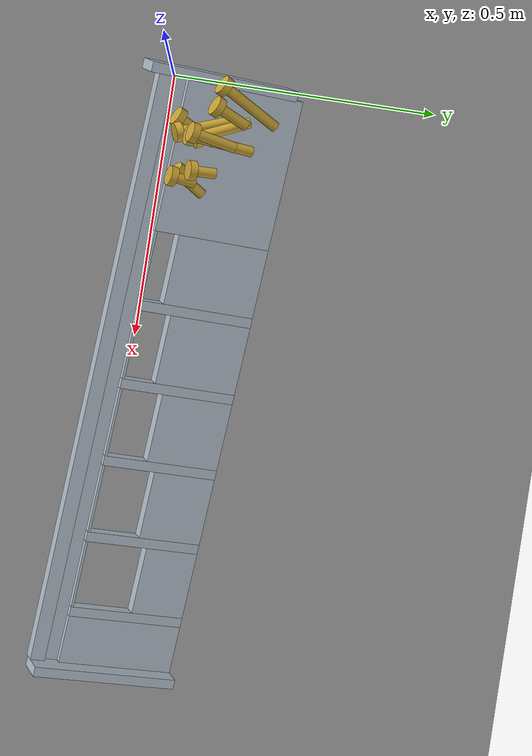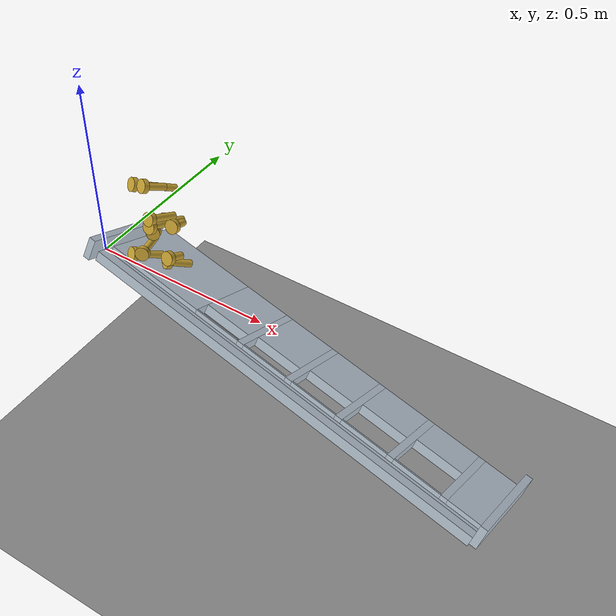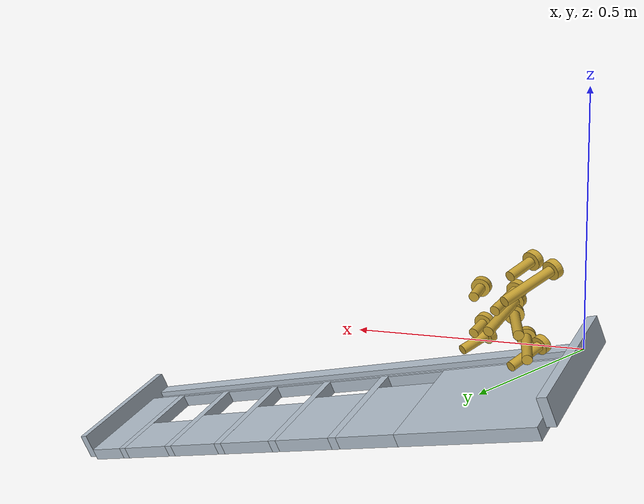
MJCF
<mujoco model="zav2"><option timestep="0.0004" gravity="0 0 -9.81" integrator="implicitfast" cone="elliptic" impratio="10"><flag multiccd="enable"/></option>
<visual><global offwidth="1280" offheight="720"/></visual>
<worldbody><light pos="0.5 -1 2" dir="-0.3 0.5 -1"/><camera name="iso" pos="0.5869 0.8645 0.5394" xyaxes="-1.0000 -0.0000 0.0000 0.0000 -0.6839 0.7295"/>
<geom name="rim" type="box" pos="0.58398 -0.06577 -0.12274" size="0.60000 0.01500 0.01400" xyaxes="0.978148 -0.077885 -0.192772 0.000000 0.927184 -0.374607" rgba="0.7 0.75 0.8 1" friction="0.3 0.005 0.0001"/>
<geom name="track" type="box" pos="0.58263 -0.04033 -0.13987" size="0.60000 0.01500 0.00750" xyaxes="0.978148 -0.077885 -0.192772 0.000000 0.927184 -0.374607" rgba="0.7 0.75 0.8 1" friction="0.3 0.005 0.0001"/>
<geom name="endwall0" type="box" pos="-0.00770 0.08789 -0.02272" size="0.01000 0.15000 0.03000" xyaxes="0.978148 -0.077885 -0.192772 0.000000 0.927184 -0.374607" rgba="0.7 0.75 0.8 1" friction="0.3 0.005 0.0001"/>
<geom name="lead" type="box" pos="0.14381 0.12226 -0.09780" size="0.15000 0.12000 0.01400" xyaxes="0.978148 -0.077885 -0.192772 0.000000 0.927184 -0.374607" rgba="0.7 0.75 0.8 1" friction="0.3 0.005 0.0001"/>
<geom name="lip0" type="box" pos="0.35900 -0.00381 -0.09620" size="0.07000 0.00250 0.01400" xyaxes="0.978148 -0.077885 -0.192772 0.000000 0.927184 -0.374607" rgba="0.7 0.75 0.8 1" friction="0.3 0.005 0.0001"/>
<geom name="front0" type="box" pos="0.35900 0.12831 -0.14958" size="0.07000 0.09500 0.01400" xyaxes="0.978148 -0.077885 -0.192772 0.000000 0.927184 -0.374607" rgba="0.7 0.75 0.8 1" friction="0.3 0.005 0.0001"/>
<geom name="bar0" type="box" pos="0.43726 0.09890 -0.15564" size="0.01000 0.12000 0.01400" xyaxes="0.978148 -0.077885 -0.192772 0.000000 0.927184 -0.374607" rgba="0.7 0.75 0.8 1" friction="0.3 0.005 0.0001"/>
<geom name="lip1" type="box" pos="0.51551 -0.01628 -0.12704" size="0.07000 0.00250 0.01400" xyaxes="0.978148 -0.077885 -0.192772 0.000000 0.927184 -0.374607" rgba="0.7 0.75 0.8 1" friction="0.3 0.005 0.0001"/>
<geom name="front1" type="box" pos="0.51551 0.12512 -0.18417" size="0.07000 0.08500 0.01400" xyaxes="0.978148 -0.077885 -0.192772 0.000000 0.927184 -0.374607" rgba="0.7 0.75 0.8 1" friction="0.3 0.005 0.0001"/>
<geom name="bar1" type="box" pos="0.59376 0.08644 -0.18648" size="0.01000 0.12000 0.01400" xyaxes="0.978148 -0.077885 -0.192772 0.000000 0.927184 -0.374607" rgba="0.7 0.75 0.8 1" friction="0.3 0.005 0.0001"/>
<geom name="lip2" type="box" pos="0.67201 -0.02874 -0.15788" size="0.07000 0.00250 0.01400" xyaxes="0.978148 -0.077885 -0.192772 0.000000 0.927184 -0.374607" rgba="0.7 0.75 0.8 1" friction="0.3 0.005 0.0001"/>
<geom name="front2" type="box" pos="0.67201 0.12193 -0.21876" size="0.07000 0.07500 0.01400" xyaxes="0.978148 -0.077885 -0.192772 0.000000 0.927184 -0.374607" rgba="0.7 0.75 0.8 1" friction="0.3 0.005 0.0001"/>
<geom name="bar2" type="box" pos="0.75026 0.07398 -0.21732" size="0.01000 0.12000 0.01400" xyaxes="0.978148 -0.077885 -0.192772 0.000000 0.927184 -0.374607" rgba="0.7 0.75 0.8 1" friction="0.3 0.005 0.0001"/>
<geom name="lip3" type="box" pos="0.82851 -0.04120 -0.18873" size="0.07000 0.00250 0.01400" xyaxes="0.978148 -0.077885 -0.192772 0.000000 0.927184 -0.374607" rgba="0.7 0.75 0.8 1" friction="0.3 0.005 0.0001"/>
<geom name="front3" type="box" pos="0.82851 0.11874 -0.25335" size="0.07000 0.06500 0.01400" xyaxes="0.978148 -0.077885 -0.192772 0.000000 0.927184 -0.374607" rgba="0.7 0.75 0.8 1" friction="0.3 0.005 0.0001"/>
<geom name="bar3" type="box" pos="0.90677 0.06151 -0.24817" size="0.01000 0.12000 0.01400" xyaxes="0.978148 -0.077885 -0.192772 0.000000 0.927184 -0.374607" rgba="0.7 0.75 0.8 1" friction="0.3 0.005 0.0001"/>
<geom name="lip4" type="box" pos="0.98502 -0.05366 -0.21957" size="0.07000 0.00250 0.01400" xyaxes="0.978148 -0.077885 -0.192772 0.000000 0.927184 -0.374607" rgba="0.7 0.75 0.8 1" friction="0.3 0.005 0.0001"/>
<geom name="front4" type="box" pos="0.98502 0.11555 -0.28794" size="0.07000 0.05500 0.01400" xyaxes="0.978148 -0.077885 -0.192772 0.000000 0.927184 -0.374607" rgba="0.7 0.75 0.8 1" friction="0.3 0.005 0.0001"/>
<geom name="bar4" type="box" pos="1.06327 0.04905 -0.27901" size="0.01000 0.12000 0.01400" xyaxes="0.978148 -0.077885 -0.192772 0.000000 0.927184 -0.374607" rgba="0.7 0.75 0.8 1" friction="0.3 0.005 0.0001"/>
<geom name="end" type="box" pos="1.12196 0.04438 -0.29058" size="0.05000 0.12000 0.01400" xyaxes="0.978148 -0.077885 -0.192772 0.000000 0.927184 -0.374607" rgba="0.7 0.75 0.8 1" friction="0.3 0.005 0.0001"/>
<geom name="endwall1" type="box" pos="1.18564 0.02069 -0.26914" size="0.01000 0.15000 0.03000" xyaxes="0.978148 -0.077885 -0.192772 0.000000 0.927184 -0.374607" rgba="0.7 0.75 0.8 1" friction="0.3 0.005 0.0001"/>
<geom name="ground" type="plane" pos="0 0 -0.8" size="4 4 0.1"/>
<body name="s0" pos="0.11242 0.09151 -0.03077" quat="0.819123 0.526830 -0.110672 -0.198092"><freejoint/>
<geom name="s0_sh" type="cylinder" size="0.01000 0.04000" pos="0 0 0.04000" density="7850" rgba="0.8 0.65 0.2 1" friction="0.3 0.005 0.0001"/>
<geom name="s0_hd" type="cylinder" size="0.01900 0.00700" pos="0 0 0.08700" density="7850" rgba="0.8 0.65 0.2 1" friction="0.3 0.005 0.0001"/>
</body>
<body name="s1" pos="0.06950 0.11883 -0.00992" quat="0.798911 0.562515 0.212018 0.019160"><freejoint/>
<geom name="s1_sh" type="cylinder" size="0.01000 0.05000" pos="0 0 0.05000" density="7850" rgba="0.8 0.65 0.2 1" friction="0.3 0.005 0.0001"/>
<geom name="s1_hd" type="cylinder" size="0.01900 0.00700" pos="0 0 0.10700" density="7850" rgba="0.8 0.65 0.2 1" friction="0.3 0.005 0.0001"/>
</body>
<body name="s2" pos="0.21572 0.08588 -0.00807" quat="0.812559 0.516258 -0.151518 -0.224203"><freejoint/>
<geom name="s2_sh" type="cylinder" size="0.01000 0.03000" pos="0 0 0.03000" density="7850" rgba="0.8 0.65 0.2 1" friction="0.3 0.005 0.0001"/>
<geom name="s2_hd" type="cylinder" size="0.01900 0.00700" pos="0 0 0.06700" density="7850" rgba="0.8 0.65 0.2 1" friction="0.3 0.005 0.0001"/>
</body>
<body name="s3" pos="0.19960 0.06913 0.02445" quat="0.826440 0.550717 0.014398 -0.116193"><freejoint/>
<geom name="s3_sh" type="cylinder" size="0.01000 0.02000" pos="0 0 0.02000" density="7850" rgba="0.8 0.65 0.2 1" friction="0.3 0.005 0.0001"/>
<geom name="s3_hd" type="cylinder" size="0.01900 0.00700" pos="0 0 0.04700" density="7850" rgba="0.8 0.65 0.2 1" friction="0.3 0.005 0.0001"/>
</body>
<body name="s4" pos="0.07326 0.15553 0.04056" quat="0.791108 0.561517 0.239495 0.038585"><freejoint/>
<geom name="s4_sh" type="cylinder" size="0.01000 0.05000" pos="0 0 0.05000" density="7850" rgba="0.8 0.65 0.2 1" friction="0.3 0.005 0.0001"/>
<geom name="s4_hd" type="cylinder" size="0.01900 0.00700" pos="0 0 0.10700" density="7850" rgba="0.8 0.65 0.2 1" friction="0.3 0.005 0.0001"/>
</body>
<body name="s5" pos="0.12722 0.16822 0.04511" quat="0.825922 0.553143 0.032605 -0.104030"><freejoint/>
<geom name="s5_sh" type="cylinder" size="0.01000 0.06000" pos="0 0 0.06000" density="7850" rgba="0.8 0.65 0.2 1" friction="0.3 0.005 0.0001"/>
<geom name="s5_hd" type="cylinder" size="0.01900 0.00700" pos="0 0 0.12700" density="7850" rgba="0.8 0.65 0.2 1" friction="0.3 0.005 0.0001"/>
</body>
<body name="s6" pos="0.12837 0.13593 0.07994" quat="0.826562 0.548261 -0.002273 -0.127277"><freejoint/>
<geom name="s6_sh" type="cylinder" size="0.01000 0.04000" pos="0 0 0.04000" density="7850" rgba="0.8 0.65 0.2 1" friction="0.3 0.005 0.0001"/>
<geom name="s6_hd" type="cylinder" size="0.01900 0.00700" pos="0 0 0.08700" density="7850" rgba="0.8 0.65 0.2 1" friction="0.3 0.005 0.0001"/>
</body>
<body name="s7" pos="0.18338 0.10800 0.10067" quat="0.822371 0.558479 0.083161 -0.069934"><freejoint/>
<geom name="s7_sh" type="cylinder" size="0.01000 0.02000" pos="0 0 0.02000" density="7850" rgba="0.8 0.65 0.2 1" friction="0.3 0.005 0.0001"/>
<geom name="s7_hd" type="cylinder" size="0.01900 0.00700" pos="0 0 0.04700" density="7850" rgba="0.8 0.65 0.2 1" friction="0.3 0.005 0.0001"/>
</body>
<body name="s8" pos="0.08204 0.20522 0.10667" quat="0.817489 0.523998 -0.122157 -0.205466"><freejoint/>
<geom name="s8_sh" type="cylinder" size="0.01000 0.06000" pos="0 0 0.06000" density="7850" rgba="0.8 0.65 0.2 1" friction="0.3 0.005 0.0001"/>
<geom name="s8_hd" type="cylinder" size="0.01900 0.00700" pos="0 0 0.12700" density="7850" rgba="0.8 0.65 0.2 1" friction="0.3 0.005 0.0001"/>
</body>
<body name="s9" pos="0.09287 0.15258 0.14752" quat="0.821812 0.531986 -0.088517 -0.183796"><freejoint/>
<geom name="s9_sh" type="cylinder" size="0.01000 0.03000" pos="0 0 0.03000" density="7850" rgba="0.8 0.65 0.2 1" friction="0.3 0.005 0.0001"/>
<geom name="s9_hd" type="cylinder" size="0.01900 0.00700" pos="0 0 0.06700" density="7850" rgba="0.8 0.65 0.2 1" friction="0.3 0.005 0.0001"/>
</body>
</worldbody></mujoco>
